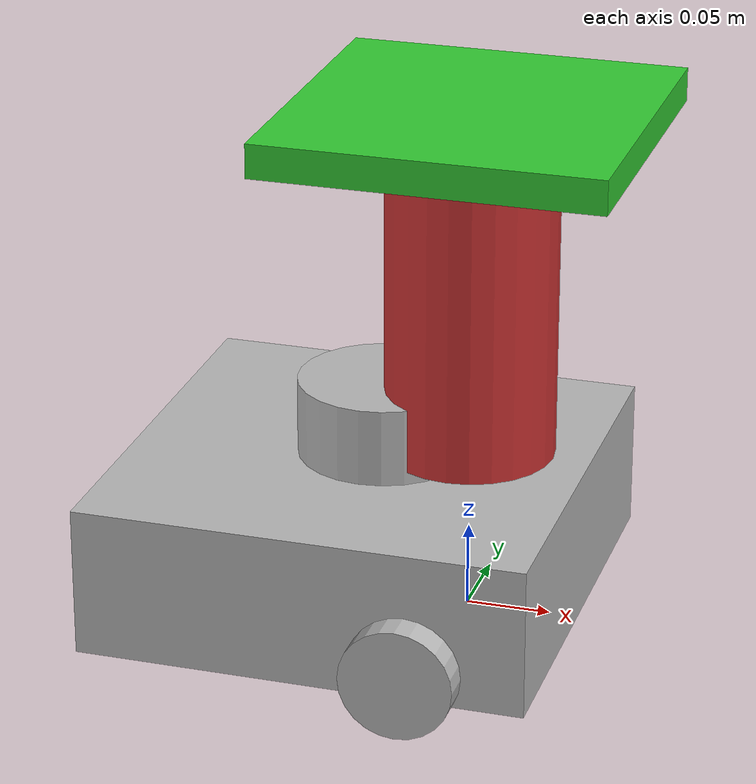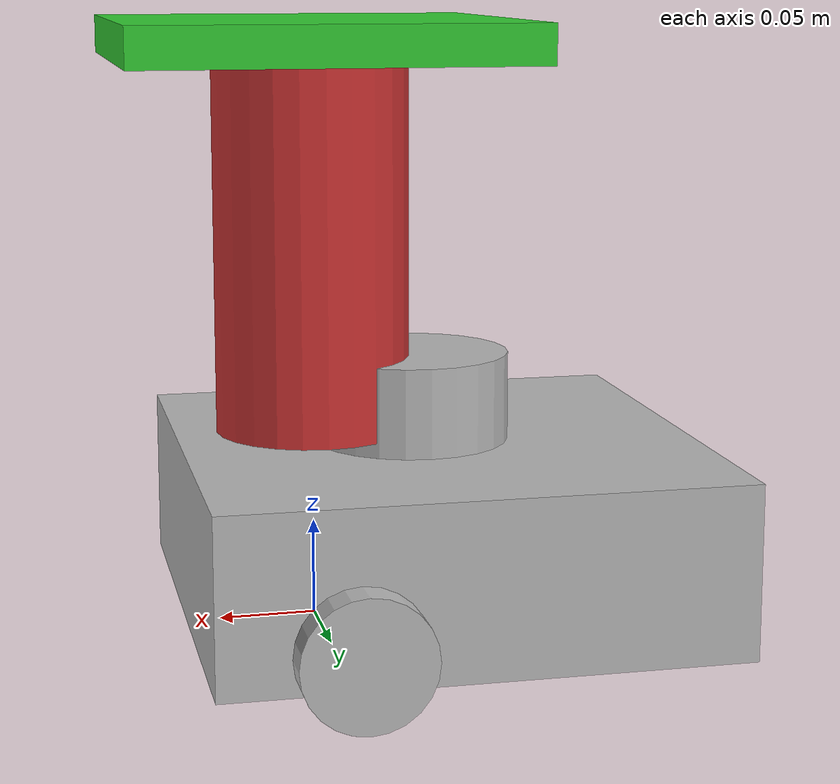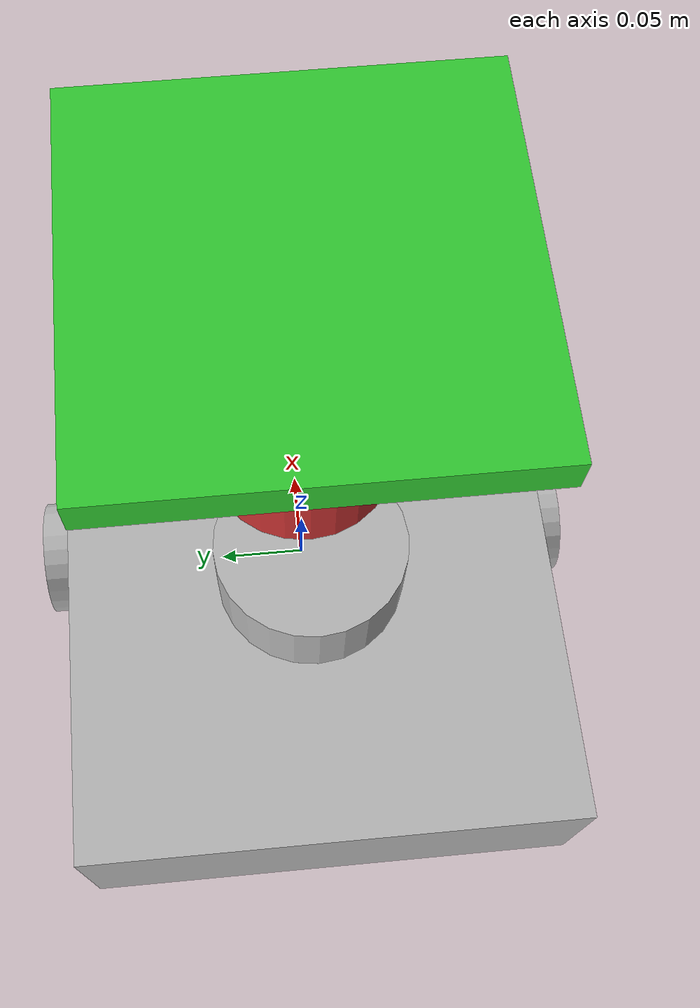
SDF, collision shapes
<?xml version="1.0" ?>
<sdf version="1.5">
  <model name="turtlebot3_waffle">
  <pose>0.0 0.0 0.0 0.0 0.0 0.0</pose>

    <link name="base_footprint"/>

    <link name="base_link">

      <inertial>
        <pose>-0.064 0 0.048 0 0 0</pose>
        <inertia>
          <ixx>4.2111447e-02</ixx>
          <ixy>0</ixy>
          <ixz>0</ixz>
          <iyy>4.2111447e-02</iyy>
          <iyz>0</iyz>
          <izz>7.5254874e-02</izz>
        </inertia>
        <mass>1.3729096e+00</mass>
      </inertial>

      <collision name="base_collision">
        <pose>-0.064 0 0.048 0 0 0</pose>
        <geometry>
          <box>
            <size>0.265 0.265 0.089</size>
          </box>
        </geometry>
      </collision>

      <visual name="base_visual">
        <pose>-0.064 0 0 0 0 0</pose>
        <geometry>
          <mesh>
            <uri>model://turtlebot3_common/meshes/waffle_base.dae</uri>
            <scale>0.001 0.001 0.001</scale>
          </mesh>
        </geometry>
      </visual>
    </link>

    <link name="imu_link">
      <sensor name="tb3_imu" type="imu">
        <always_on>true</always_on>
        <update_rate>200</update_rate>
        <imu>
          <angular_velocity>
            <x>
              <noise type="gaussian">
                <mean>0.0</mean>
                <stddev>2e-4</stddev>
              </noise>
            </x>
            <y>
              <noise type="gaussian">
                <mean>0.0</mean>
                <stddev>2e-4</stddev>
              </noise>
            </y>
            <z>
              <noise type="gaussian">
                <mean>0.0</mean>
                <stddev>2e-4</stddev>
              </noise>
            </z>
          </angular_velocity>
          <linear_acceleration>
            <x>
              <noise type="gaussian">
                <mean>0.0</mean>
                <stddev>1.7e-2</stddev>
              </noise>
            </x>
            <y>
              <noise type="gaussian">
                <mean>0.0</mean>
                <stddev>1.7e-2</stddev>
              </noise>
            </y>
            <z>
              <noise type="gaussian">
                <mean>0.0</mean>
                <stddev>1.7e-2</stddev>
              </noise>
            </z>
          </linear_acceleration>
        </imu>
        <plugin name="turtlebot3_imu" filename="libgazebo_ros_imu_sensor.so">
          <ros>
            <remapping>~/out:=imu</remapping>
          </ros>
        </plugin>
      </sensor>
    </link>

    <link name="base_scan">
      <inertial>
        <pose>-0.052 0 0.111 0 0 0</pose>
        <inertia>
          <ixx>0.001</ixx>
          <ixy>0.000</ixy>
          <ixz>0.000</ixz>
          <iyy>0.001</iyy>
          <iyz>0.000</iyz>
          <izz>0.001</izz>
        </inertia>
        <mass>0.114</mass>
      </inertial>

      <collision name="lidar_sensor_collision">
        <pose>-0.052 0 0.111 0 0 0</pose>
        <geometry>
          <cylinder>
            <radius>0.0508</radius>
            <length>0.055</length>
          </cylinder>
        </geometry>
      </collision>

      <visual name="lidar_sensor_visual">
        <pose>-0.064 0 0.121 0 0 0</pose>
        <geometry>
          <mesh>
            <uri>model://turtlebot3_common/meshes/lds.dae</uri>
            <scale>0.001 0.001 0.001</scale>
          </mesh>
        </geometry>
      </visual>

      <sensor name="hls_lfcd_lds" type="ray">
        <always_on>true</always_on>
        <visualize>false</visualize>
        <pose>-0.064 0 0.121 0 0 0</pose>
        <update_rate>5</update_rate>
        <ray>
          <scan>
            <horizontal>
              <samples>360</samples>
              <resolution>1.000000</resolution>
              <min_angle>0.000000</min_angle>
              <max_angle>6.280000</max_angle>
            </horizontal>
          </scan>
          <range>
            <min>0.120000</min>
            <max>3.5</max>
            <resolution>0.015000</resolution>
          </range>
          <noise>
            <type>gaussian</type>
            <mean>0.0</mean>
            <stddev>0.01</stddev>
          </noise>
        </ray>
        <plugin name="turtlebot3_laserscan" filename="libgazebo_ros_ray_sensor.so">
          <ros>
            <remapping>~/out:=scan</remapping>
          </ros>
          <output_type>sensor_msgs/LaserScan</output_type>
          <frame_name>base_scan</frame_name>
        </plugin>
      </sensor>
    </link>

    <link name="wheel_left_link">

      <inertial>
        <pose>0.0 0.144 0.023 -1.57 0 0</pose>
        <inertia>
          <ixx>1.1175580e-05</ixx>
          <ixy>-4.2369783e-11</ixy>
          <ixz>-5.9381719e-09</ixz>
          <iyy>1.1192413e-05</iyy>
          <iyz>-1.4400107e-11</iyz>
          <izz>2.0712558e-05</izz>
        </inertia>
        <mass>0.1</mass>
      </inertial>

      <collision name="wheel_left_collision">
        <pose>0.0 0.144 0.023 -1.57 0 0</pose>
        <geometry>
          <cylinder>
            <radius>0.033</radius>
            <length>0.018</length>
          </cylinder>
        </geometry>
        <surface>
          <!-- This friction pamareter don't contain reliable data!! -->
          <friction>
            <ode>
              <mu>100000.0</mu>
              <mu2>100000.0</mu2>
              <fdir1>0 0 0</fdir1>
              <slip1>0.0</slip1>
              <slip2>0.0</slip2>
            </ode>
          </friction>
          <contact>
            <ode>
              <soft_cfm>0</soft_cfm>
              <soft_erp>0.2</soft_erp>
              <kp>1e+5</kp>
              <kd>1</kd>
              <max_vel>0.01</max_vel>
              <min_depth>0.001</min_depth>
            </ode>
          </contact>
        </surface>
      </collision>

      <visual name="wheel_left_visual">
        <pose>0.0 0.144 0.023 0 0 0</pose>
        <geometry>
          <mesh>
            <uri>model://turtlebot3_common/meshes/tire.dae</uri>
            <scale>0.001 0.001 0.001</scale>
          </mesh>
        </geometry>
      </visual>
    </link>

    <link name="wheel_right_link">

      <inertial>
        <pose>0.0 -0.144 0.023 -1.57 0 0</pose>
        <inertia>
          <ixx>1.1175580e-05</ixx>
          <ixy>-4.2369783e-11</ixy>
          <ixz>-5.9381719e-09</ixz>
          <iyy>1.1192413e-05</iyy>
          <iyz>-1.4400107e-11</iyz>
          <izz>2.0712558e-05</izz>
        </inertia>
        <mass>0.1</mass>
      </inertial>

      <collision name="wheel_right_collision">
        <pose>0.0 -0.144 0.023 -1.57 0 0</pose>
        <geometry>
          <cylinder>
            <radius>0.033</radius>
            <length>0.018</length>
          </cylinder>
        </geometry>
        <surface>
          <!-- This friction pamareter don't contain reliable data!! -->
          <friction>
            <ode>
              <mu>100000.0</mu>
              <mu2>100000.0</mu2>
              <fdir1>0 0 0</fdir1>
              <slip1>0.0</slip1>
              <slip2>0.0</slip2>
            </ode>
          </friction>
          <contact>
            <ode>
              <soft_cfm>0</soft_cfm>
              <soft_erp>0.2</soft_erp>
              <kp>1e+5</kp>
              <kd>1</kd>
              <max_vel>0.01</max_vel>
              <min_depth>0.001</min_depth>
            </ode>
          </contact>
        </surface>
      </collision>

      <visual name="wheel_right_visual">
        <pose>0.0 -0.144 0.023 0 0 0</pose>
        <geometry>
          <mesh>
            <uri>model://turtlebot3_common/meshes/tire.dae</uri>
            <scale>0.001 0.001 0.001</scale>
          </mesh>
        </geometry>
      </visual>
    </link>

    <link name='caster_back_right_link'>
      <pose>-0.177 -0.064 -0.004 -1.57 0 0</pose>
      <inertial>
        <mass>0.001</mass>
        <inertia>
          <ixx>0.00001</ixx>
          <ixy>0.000</ixy>
          <ixz>0.000</ixz>
          <iyy>0.00001</iyy>
          <iyz>0.000</iyz>
          <izz>0.00001</izz>
        </inertia>
      </inertial>
      <collision name='collision'>
        <geometry>
          <sphere>
            <radius>0.005000</radius>
          </sphere>
        </geometry>
        <surface>
          <contact>
            <ode>
              <soft_cfm>0</soft_cfm>
              <soft_erp>0.2</soft_erp>
              <kp>1e+5</kp>
              <kd>1</kd>
              <max_vel>0.01</max_vel>
              <min_depth>0.001</min_depth>
            </ode>
          </contact>
        </surface>
      </collision>
    </link>

    <link name='caster_back_left_link'>
      <pose>-0.177 0.064 -0.004 -1.57 0 0</pose>
      <inertial>
        <mass>0.001</mass>
        <inertia>
          <ixx>0.00001</ixx>
          <ixy>0.000</ixy>
          <ixz>0.000</ixz>
          <iyy>0.00001</iyy>
          <iyz>0.000</iyz>
          <izz>0.00001</izz>
        </inertia>
      </inertial>
      <collision name='collision'>
        <geometry>
          <sphere>
            <radius>0.005000</radius>
          </sphere>
        </geometry>
        <surface>
          <contact>
            <ode>
              <soft_cfm>0</soft_cfm>
              <soft_erp>0.2</soft_erp>
              <kp>1e+5</kp>
              <kd>1</kd>
              <max_vel>0.01</max_vel>
              <min_depth>0.001</min_depth>
            </ode>
          </contact>
        </surface>
      </collision>
    </link>

    <link name="camera_link"/>

    <link name="camera_rgb_frame">
      <inertial>
        <pose>0.069 -0.047 0.107 0 0 0</pose>
        <inertia>
          <ixx>0.001</ixx>
          <ixy>0.000</ixy>
          <ixz>0.000</ixz>
          <iyy>0.001</iyy>
          <iyz>0.000</iyz>
          <izz>0.001</izz>
        </inertia>
        <mass>0.035</mass>
      </inertial>

      <pose>0.069 -0.047 0.107 0 0 0</pose>
      <sensor name="camera" type="depth">
       <pose> 0 0 0 0 0 0 </pose>
        <always_on>true</always_on>
        <visualize>true</visualize>
        <update_rate>1</update_rate>
        <camera name="intel_realsense_r200">
           <horizontal_fov>1.02974</horizontal_fov>
          <image>
            <width>640</width>
            <height>480</height>
            <format>B8G8R8</format>
          </image>
          <clip>
               <near>0.05</near>
               <far>8.0</far>
          </clip>
          <noise>
            <type>gaussian</type>

            <mean>0.0</mean>
            <stddev>0.007</stddev>
          </noise>
        </camera>
          <plugin name="camera_driver" filename="libgazebo_ros_camera.so">
            <ros>
            </ros>
          <frame_name>camera_rgb_frame</frame_name>
          <min_depth>0.1</min_depth>
          <max_depth>100</max_depth>

          </plugin>
      </sensor>
    </link>

    <link name="mounting_cylinder">
        <pose>0 0 0.2 0 0 0</pose> <!-- base_link 기준 위치 조정 -->
        <inertial>
            <mass>0.5</mass>
            <inertia>
                <ixx>0.001</ixx>
                <ixy>0</ixy>
                <ixz>0</ixz>
                <iyy>0.001</iyy>
                <iyz>0</iyz>
                <izz>0.001</izz>
            </inertia>
        </inertial>
        <collision name="cylinder_collision">
            <geometry>
                <cylinder>
                    <radius>0.05</radius>
                    <length>0.2</length>
                </cylinder>
            </geometry>
        </collision>
        <visual name="cylinder_visual">
            <geometry>
                <cylinder>
                    <radius>0.05</radius>
                    <length>0.2</length>
                </cylinder>
            </geometry>
            <material>
                <ambient>0.8 0.2 0.2 1</ambient> <!-- 빨간색 -->
                <diffuse>0.8 0.2 0.2 1</diffuse>
            </material>
        </visual>
    </link>

    <link name="mounting_plate">
        <pose>0 0 0.3 0 0 0</pose> <!-- 실린더 위에 위치 -->
        <inertial>
            <mass>0.3</mass>
            <inertia>
                <ixx>0.0005</ixx>
                <ixy>0</ixy>
                <ixz>0</ixz>
                <iyy>0.0005</iyy>
                <iyz>0</iyz>
                <izz>0.0005</izz>
            </inertia>
        </inertial>
        <collision name="plate_collision">
            <geometry>
                <box>
                    <size>0.2 0.2 0.02</size>
                </box>
            </geometry>
        </collision>
        <visual name="plate_visual">
            <geometry>
                <box>
                    <size>0.2 0.2 0.02</size>
                </box>
            </geometry>
            <material>
                <ambient>0.2 0.8 0.2 1</ambient> <!-- 초록색 -->
                <diffuse>0.2 0.8 0.2 1</diffuse>
            </material>
        </visual>
    </link>

    <joint name="base_joint" type="fixed">
      <parent>base_footprint</parent>
      <child>base_link</child>
    </joint>

    <joint name="wheel_left_joint" type="revolute">
      <parent>base_link</parent>
      <child>wheel_left_link</child>
      <pose>0.0 0.144 0.023 -1.57 0 0</pose>
      <axis>
        <xyz>0 0 1</xyz>
      </axis>
    </joint>

    <joint name="wheel_right_joint" type="revolute">
      <parent>base_link</parent>
      <child>wheel_right_link</child>
      <pose>0.0 -0.144 0.023 -1.57 0 0</pose>
      <axis>
        <xyz>0 0 1</xyz>
      </axis>
    </joint>

    <joint name='caster_back_right_joint' type='ball'>
      <parent>base_link</parent>
      <child>caster_back_right_link</child>
    </joint>

    <joint name='caster_back_left_joint' type='ball'>
      <parent>base_link</parent>
      <child>caster_back_left_link</child>
    </joint>

    <joint name="imu_joint" type="fixed">
      <parent>base_link</parent>
      <child>imu_link</child>
      <pose>-0.032 0 0.068 0 0 0</pose>
      <axis>
        <xyz>0 0 1</xyz>
      </axis>
    </joint>

    <joint name="lidar_joint" type="fixed">
      <parent>base_link</parent>
      <child>base_scan</child>
      <pose>-0.064 0 0.121 0 0 0</pose>
      <axis>
        <xyz>0 0 1</xyz>
      </axis>
    </joint>

    <joint name="camera_joint" type="fixed">
      <parent>base_link</parent>
      <child>camera_link</child>
      <pose>0.064 -0.065 0.094 0 0 0</pose>
      <axis>
        <xyz>0 0 1</xyz>
      </axis>
    </joint>

    <joint name="camera_rgb_joint" type="fixed">
      <parent>camera_link</parent>
      <child>camera_rgb_frame</child>
      <pose>0.005 0.018 0.013 1 0 0</pose>
      <axis>
        <xyz>0 0 1</xyz>
      </axis>
    </joint>

    <joint name="cylinder_vertical_joint" type="prismatic">
        <parent>base_link</parent>
        <child>mounting_cylinder</child>
        <pose>0 0 0.2 0 0 0</pose> <!-- 상대 위치 조정 -->
        <axis>
            <xyz>0 0 1</xyz> <!-- Z축 방향 -->
        </axis>
        <limit>
            <lower>0</lower>
            <upper>0.5</upper>
            <effort>10</effort>
            <velocity>0.1</velocity>
        </limit>
    </joint>

    <joint name="cylinder_rotation_joint" type="revolute">
        <parent>mounting_cylinder</parent>
        <child>mounting_plate</child>
        <pose>0 0 0.2 0 0 0</pose> <!-- 실린더 상단 위치 -->
        <axis>
            <xyz>0 0 1</xyz> <!-- Z축 회전 -->
        </axis>
        <limit>
            <lower>-3.1416</lower>
            <upper>3.1416</upper>
            <effort>5</effort>
            <velocity>1.0</velocity>
        </limit>
    </joint>

    <plugin name="turtlebot3_diff_drive" filename="libgazebo_ros_diff_drive.so">

      <ros>
        <remapping>/tf:=tf</remapping>
      </ros>

      <update_rate>30</update_rate>
      <left_joint>wheel_left_joint</left_joint>
      <right_joint>wheel_right_joint</right_joint>

      <wheel_separation>0.287</wheel_separation>
      <wheel_diameter>0.066</wheel_diameter>

      <max_wheel_torque>20</max_wheel_torque>
      <max_wheel_acceleration>1.0</max_wheel_acceleration>

      <command_topic>cmd_vel</command_topic>

      <publish_odom>true</publish_odom>
      <publish_odom_tf>true</publish_odom_tf>
      <publish_wheel_tf>false</publish_wheel_tf>

      <odometry_topic>odom</odometry_topic>
      <odometry_frame>odom</odometry_frame>
      <robot_base_frame>base_footprint</robot_base_frame>

    </plugin>

    <plugin name="turtlebot3_joint_state" filename="libgazebo_ros_joint_state_publisher.so">
      <ros>
        <remapping>~/out:=joint_states</remapping>
      </ros>
      <update_rate>30</update_rate>
      <joint_name>wheel_left_joint</joint_name>
      <joint_name>wheel_right_joint</joint_name>
    </plugin>

  </model>
</sdf>
